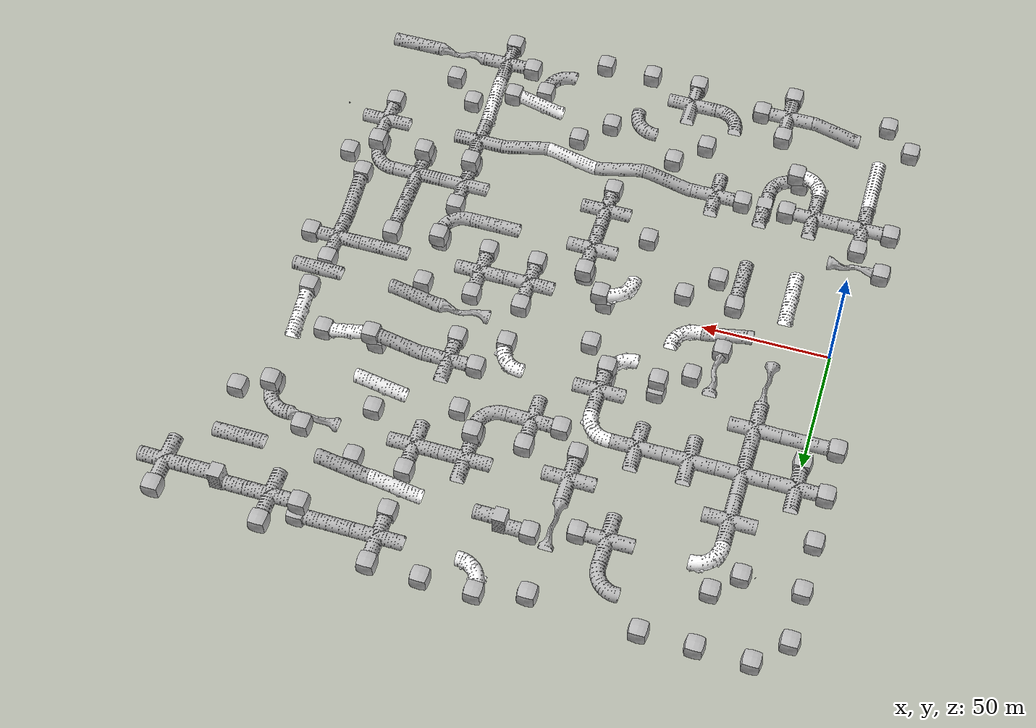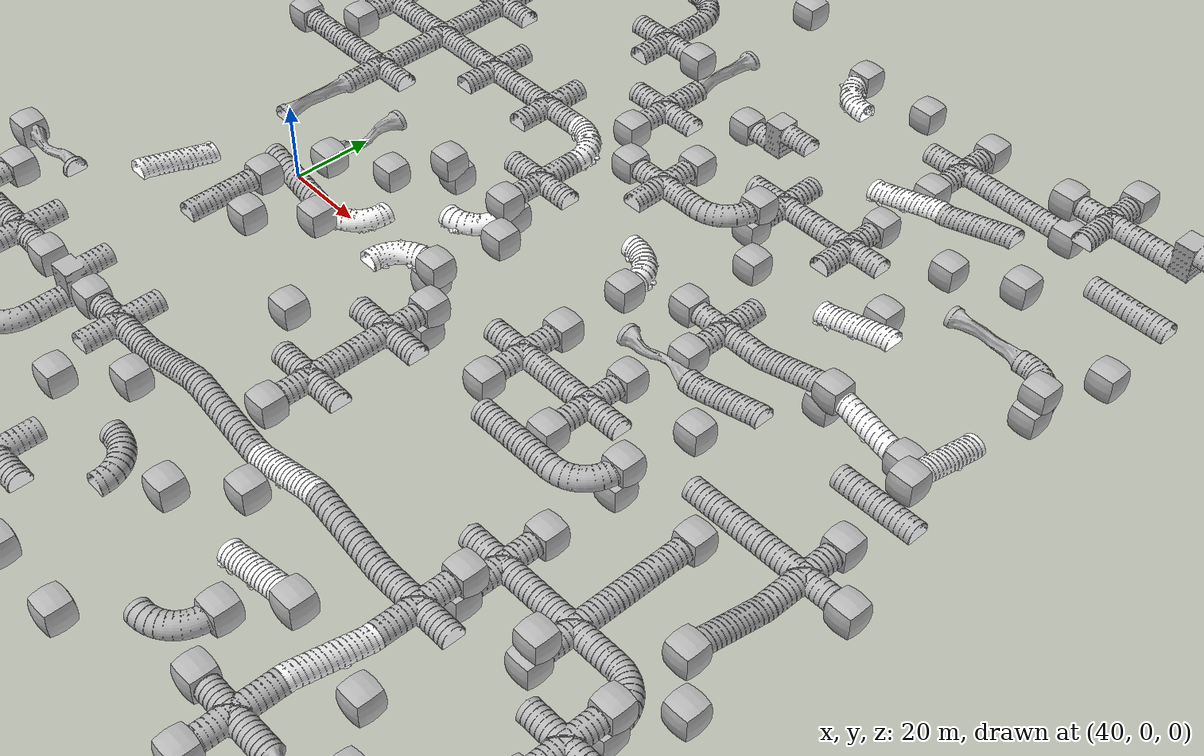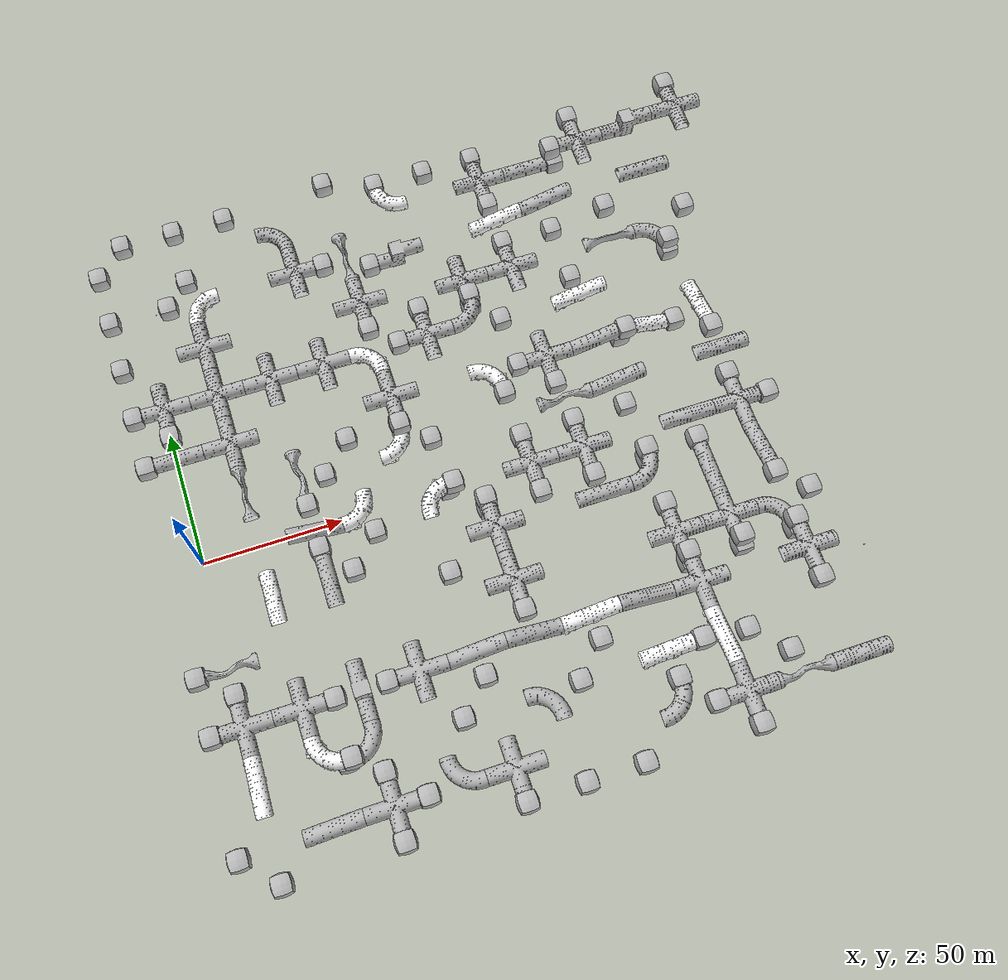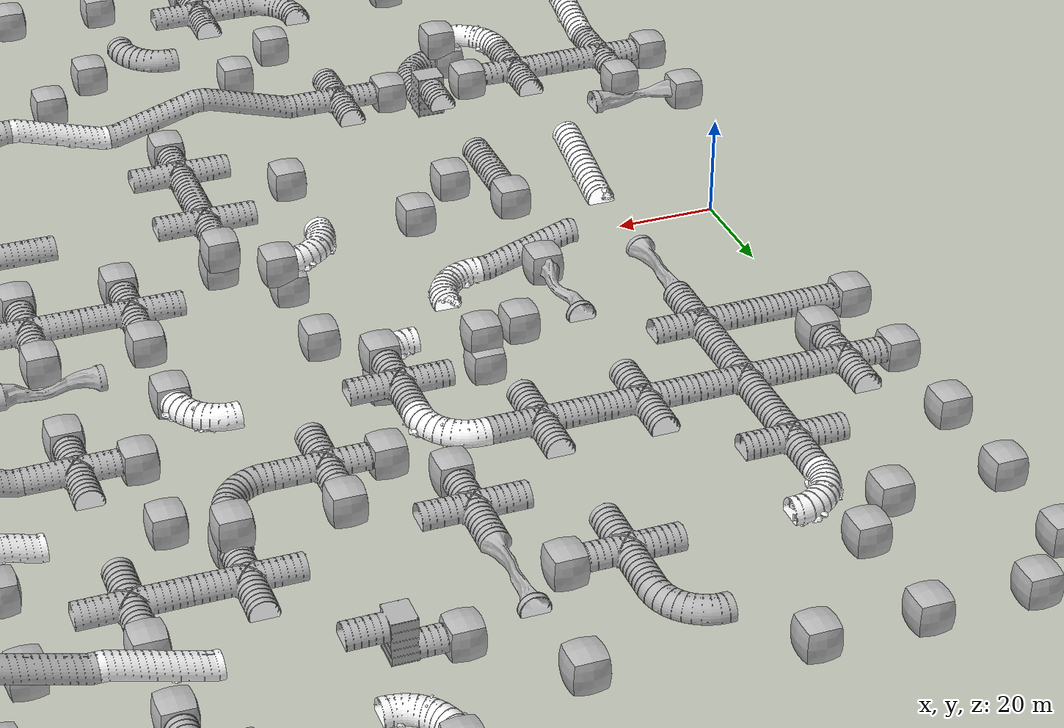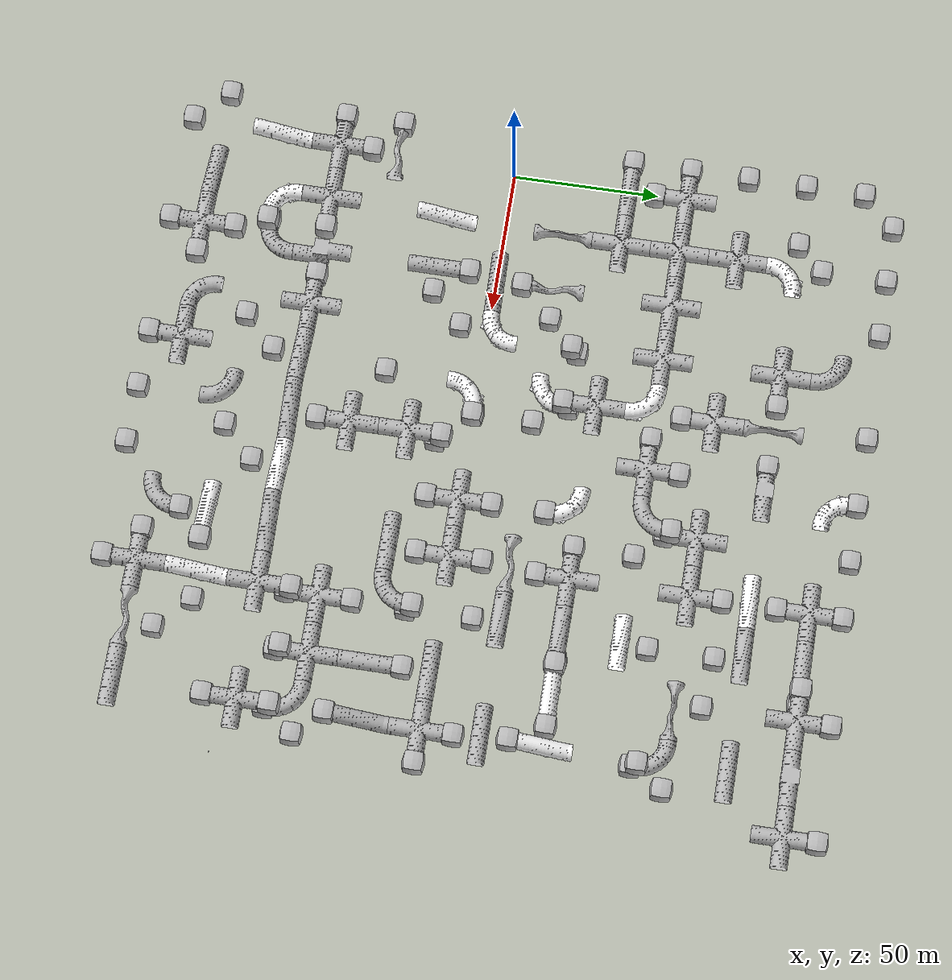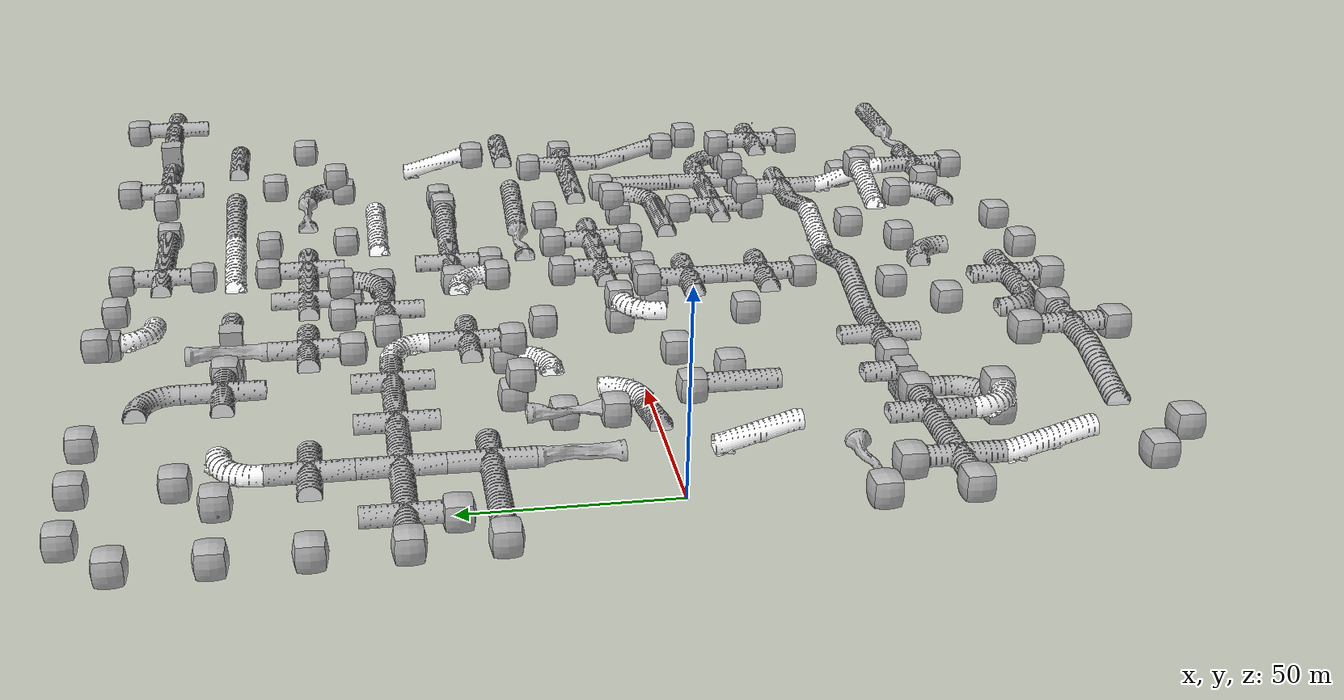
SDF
<sdf version="1.6">
 <world name="tunnel_circuit_practice_03">
  <include><name>artifact_origin</name><pose>10 0 0.0 0 0 0</pose><uri>model://fiducial</uri></include>
  <include>
   <name>tile_2</name>
   <uri>model://tunnel_tile_blocker</uri>
   <pose>-11.000000 120.000000 0.000000 0 0 0.000000</pose>
  </include>
  <include>
   <name>tile_3</name>
   <uri>model://tunnel_tile_blocker</uri>
   <pose>0.000000 131.000000 0.000000 0 0 0.000000</pose>
  </include>
  <include>
   <name>tile_5</name>
   <uri>model://tunnel_tile_blocker</uri>
   <pose>20.000000 109.000000 0.000000 0 0 0.000000</pose>
  </include>
  <include>
   <name>tile_6</name>
   <uri>model://tunnel_tile_blocker</uri>
   <pose>20.000000 131.000000 0.000000 0 0 0.000000</pose>
  </include>
  <include>
   <name>tile_8</name>
   <uri>model://tunnel_tile_blocker</uri>
   <pose>40.000000 131.000000 0.000000 0 0 0.000000</pose>
  </include>
  <include>
   <name>tile_9</name>
   <uri>model://tunnel_tile_2</uri>
   <pose>60.000000 120.000000 0.000000 0 0 4.712389</pose>
  </include>
  <include>
   <name>tile_11</name>
   <uri>model://tunnel_tile_blocker</uri>
   <pose>80.000000 131.000000 5.000000 0 0 0.000000</pose>
  </include>
  <include>
   <name>tile_12</name>
   <uri>model://Rough Tunnel Tile 90-degree Turn</uri>
   <pose>100.000000 120.000000 -5.000000 0 0 1.570796</pose>
  </include>
  <include>
   <name>tile_13</name>
   <uri>model://tunnel_tile_blocker</uri>
   <pose>100.000000 131.000000 -5.000000 0 0 0.000000</pose>
  </include>
  <include>
   <name>tile_15</name>
   <uri>model://tunnel_tile_blocker</uri>
   <pose>120.000000 131.000000 -5.000000 0 0 0.000000</pose>
  </include>
  <include>
   <name>tile_16</name>
   <uri>model://tunnel_tile_1</uri>
   <pose>140.000000 120.000000 -5.000000 0 0 0.000000</pose>
  </include>
  <include>
   <name>tile_17</name>
   <uri>model://tunnel_tile_blocker</uri>
   <pose>140.000000 131.000000 -5.000000 0 0 0.000000</pose>
  </include>
  <include>
   <name>tile_18</name>
   <uri>model://tunnel_tile_blocker</uri>
   <pose>140.000000 109.000000 -5.000000 0 0 0.000000</pose>
  </include>
  <include>
   <name>tile_19</name>
   <uri>model://tunnel_tile_5</uri>
   <pose>160.000000 120.000000 -5.000000 0 0 1.570796</pose>
  </include>
  <include>
   <name>tile_20</name>
   <uri>model://tunnel_tile_blocker</uri>
   <pose>171.000000 120.000000 -5.000000 0 0 0.000000</pose>
  </include>
  <include>
   <name>tile_21</name>
   <uri>model://tunnel_tile_1</uri>
   <pose>180.000000 120.000000 5.000000 0 0 0.000000</pose>
  </include>
  <include>
   <name>tile_22</name>
   <uri>model://tunnel_tile_blocker</uri>
   <pose>169.000000 120.000000 5.000000 0 0 0.000000</pose>
  </include>
  <include>
   <name>tile_23</name>
   <uri>model://tunnel_tile_blocker</uri>
   <pose>180.000000 131.000000 5.000000 0 0 0.000000</pose>
  </include>
  <include>
   <name>backpack_1</name>
   <uri>model://Backpack</uri>
   <pose>181.000000 126.000000 5.000000 0 0 0.261799</pose>
  </include>
  <include>
   <name>tile_24</name>
   <uri>model://tunnel_tile_7</uri>
   <pose>200.000000 120.000000 5.000000 0 0 4.712389</pose>
  </include>
  <include>
   <name>tile_25</name>
   <uri>model://tunnel_tile_1</uri>
   <pose>220.000000 120.000000 10.000000 0 0 0.000000</pose>
  </include>
  <include>
   <name>tile_26</name>
   <uri>model://tunnel_tile_blocker</uri>
   <pose>220.000000 131.000000 10.000000 0 0 0.000000</pose>
  </include>
  <include>
   <name>tile_51</name>
   <uri>model://tunnel_tile_blocker</uri>
   <pose>-11.000000 100.000000 0.000000 0 0 0.000000</pose>
  </include>
  <include>
   <name>tile_52</name>
   <uri>model://tunnel_tile_blocker</uri>
   <pose>11.000000 100.000000 0.000000 0 0 0.000000</pose>
  </include>
  <include>
   <name>backpack_2</name>
   <uri>model://Backpack</uri>
   <pose>6.000000 99.200000 0.000000 0 0 -1.570796</pose>
  </include>
  <include>
   <name>tile_53</name>
   <uri>model://Rough Tunnel Tile 90-degree Turn</uri>
   <pose>20.000000 100.000000 0.000000 0 0 0.000000</pose>
  </include>
  <include>
   <name>tile_55</name>
   <uri>model://tunnel_tile_1</uri>
   <pose>60.000000 100.000000 0.000000 0 0 0.000000</pose>
  </include>
  <include>
   <name>tile_56</name>
   <uri>model://tunnel_tile_blocker</uri>
   <pose>71.000000 100.000000 0.000000 0 0 0.000000</pose>
  </include>
  <include>
   <name>tile_57</name>
   <uri>model://constrained_tunnel_tile_tall</uri>
   <pose>80.000000 100.000000 0.000000 0 0 3.141593</pose>
  </include>
  <include>
   <name>tile_58</name>
   <uri>model://tunnel_tile_7</uri>
   <pose>100.000000 100.000000 -10.000000 0 0 4.712389</pose>
  </include>
  <include>
   <name>tile_59</name>
   <uri>model://tunnel_tile_blocker</uri>
   <pose>89.000000 100.000000 -10.000000 0 0 0.000000</pose>
  </include>
  <include>
   <name>tile_61</name>
   <uri>model://Rough Tunnel Tile Ramp</uri>
   <pose>140.000000 100.000000 -5.000000 0 0 4.712389</pose>
  </include>
  <include>
   <name>tile_62</name>
   <uri>model://tunnel_tile_6</uri>
   <pose>160.000000 100.000000 0.000000 0 0 4.712389</pose>
  </include>
  <include>
   <name>tile_64</name>
   <uri>model://tunnel_tile_blocker</uri>
   <pose>180.000000 89.000000 5.000000 0 0 0.000000</pose>
  </include>
  <include>
   <name>tile_65</name>
   <uri>model://tunnel_tile_5</uri>
   <pose>200.000000 100.000000 5.000000 0 0 1.570796</pose>
  </include>
  <include>
   <name>tile_85</name>
   <uri>model://tunnel_tile_blocker</uri>
   <pose>-11.000000 80.000000 0.000000 0 0 0.000000</pose>
  </include>
  <include>
   <name>tile_86</name>
   <uri>model://tunnel_tile_1</uri>
   <pose>20.000000 80.000000 0.000000 0 0 0.000000</pose>
  </include>
  <include>
   <name>tile_89</name>
   <uri>model://tunnel_tile_1</uri>
   <pose>80.000000 80.000000 0.000000 0 0 0.000000</pose>
  </include>
  <include>
   <name>tile_90</name>
   <uri>model://tunnel_tile_blocker</uri>
   <pose>80.000000 69.000000 0.000000 0 0 0.000000</pose>
  </include>
  <include>
   <name>tile_92</name>
   <uri>model://tunnel_tile_1</uri>
   <pose>120.000000 80.000000 -5.000000 0 0 0.000000</pose>
  </include>
  <include>
   <name>tile_93</name>
   <uri>model://tunnel_tile_blocker</uri>
   <pose>120.000000 69.000000 -5.000000 0 0 0.000000</pose>
  </include>
  <include>
   <name>tile_94</name>
   <uri>model://tunnel_tile_1</uri>
   <pose>140.000000 80.000000 -5.000000 0 0 0.000000</pose>
  </include>
  <include>
   <name>tile_95</name>
   <uri>model://tunnel_tile_blocker</uri>
   <pose>140.000000 91.000000 -5.000000 0 0 0.000000</pose>
  </include>
  <include>
   <name>tile_97</name>
   <uri>model://tunnel_tile_blocker</uri>
   <pose>160.000000 91.000000 -5.000000 0 0 0.000000</pose>
  </include>
  <include>
   <name>tile_98</name>
   <uri>model://tunnel_tile_blocker</uri>
   <pose>160.000000 69.000000 -5.000000 0 0 0.000000</pose>
  </include>
  <include>
   <name>tile_99</name>
   <uri>model://constrained_tunnel_tile_tall</uri>
   <pose>180.000000 80.000000 -5.000000 0 0 1.570796</pose>
  </include>
  <include>
   <name>tile_100</name>
   <uri>model://tunnel_tile_2</uri>
   <pose>200.000000 80.000000 -5.000000 0 0 4.712389</pose>
  </include>
  <include>
   <name>tile_101</name>
   <uri>model://tunnel_tile_blocker</uri>
   <pose>200.000000 69.000000 -5.000000 0 0 0.000000</pose>
  </include>
  <include>
   <name>tile_103</name>
   <uri>model://tunnel_tile_blocker</uri>
   <pose>209.000000 80.000000 5.000000 0 0 0.000000</pose>
  </include>
  <include>
   <name>tile_125</name>
   <uri>model://tunnel_tile_1</uri>
   <pose>0.000000 60.000000 0.000000 0 0 0.000000</pose>
  </include>
  <include>
   <name>tile_126</name>
   <uri>model://tunnel_tile_blocker</uri>
   <pose>0.000000 49.000000 0.000000 0 0 0.000000</pose>
  </include>
  <include>
   <name>tile_127</name>
   <uri>model://tunnel_tile_blocker</uri>
   <pose>-11.000000 60.000000 0.000000 0 0 0.000000</pose>
  </include>
  <include>
   <name>tile_128</name>
   <uri>model://tunnel_tile_1</uri>
   <pose>20.000000 60.000000 0.000000 0 0 0.000000</pose>
  </include>
  <include>
   <name>tile_129</name>
   <uri>model://tunnel_tile_1</uri>
   <pose>40.000000 60.000000 0.000000 0 0 0.000000</pose>
  </include>
  <include>
   <name>tile_130</name>
   <uri>model://tunnel_tile_1</uri>
   <pose>60.000000 60.000000 0.000000 0 0 0.000000</pose>
  </include>
  <include>
   <name>tile_131</name>
   <uri>model://Rough Tunnel Tile 90-degree Turn</uri>
   <pose>80.000000 60.000000 0.000000 0 0 4.712389</pose>
  </include>
  <include>
   <name>tile_132</name>
   <uri>model://tunnel_tile_1</uri>
   <pose>100.000000 60.000000 0.000000 0 0 0.000000</pose>
  </include>
  <include>
   <name>tile_133</name>
   <uri>model://tunnel_tile_blocker</uri>
   <pose>89.000000 60.000000 0.000000 0 0 0.000000</pose>
  </include>
  <include>
   <name>tile_134</name>
   <uri>model://tunnel_tile_blocker</uri>
   <pose>100.000000 71.000000 0.000000 0 0 0.000000</pose>
  </include>
  <include>
   <name>tile_135</name>
   <uri>model://tunnel_tile_2</uri>
   <pose>120.000000 60.000000 0.000000 0 0 3.141593</pose>
  </include>
  <include>
   <name>tile_136</name>
   <uri>model://tunnel_tile_blocker</uri>
   <pose>120.000000 71.000000 0.000000 0 0 0.000000</pose>
  </include>
  <include>
   <name>phone_3</name>
   <uri>model://Phone</uri>
   <pose>121.000000 65.600000 0.000000 -1.570796 0 0.436332</pose>
  </include>
  <include>
   <name>tile_138</name>
   <uri>model://tunnel_tile_blocker</uri>
   <pose>129.000000 60.000000 -5.000000 0 0 0.000000</pose>
  </include>
  <include>
   <name>tile_139</name>
   <uri>model://Rough Tunnel Tile Ramp</uri>
   <pose>160.000000 60.000000 -5.000000 0 0 4.712389</pose>
  </include>
  <include>
   <name>tile_142</name>
   <uri>model://tunnel_tile_blocker</uri>
   <pose>200.000000 71.000000 0.000000 0 0 0.000000</pose>
  </include>
  <include>
   <name>tile_162</name>
   <uri>model://tunnel_tile_5</uri>
   <pose>0.000000 40.000000 0.000000 0 0 4.712389</pose>
  </include>
  <include>
   <name>tile_163</name>
   <uri>model://tunnel_tile_blocker</uri>
   <pose>-11.000000 40.000000 0.000000 0 0 0.000000</pose>
  </include>
  <include>
   <name>tile_164</name>
   <uri>model://tunnel_tile_1</uri>
   <pose>20.000000 40.000000 0.000000 0 0 0.000000</pose>
  </include>
  <include>
   <name>tile_167</name>
   <uri>model://tunnel_tile_blocker</uri>
   <pose>60.000000 29.000000 0.000000 0 0 0.000000</pose>
  </include>
  <include>
   <name>tile_168</name>
   <uri>model://tunnel_tile_1</uri>
   <pose>80.000000 40.000000 0.000000 0 0 0.000000</pose>
  </include>
  <include>
   <name>tile_169</name>
   <uri>model://tunnel_tile_blocker</uri>
   <pose>80.000000 29.000000 0.000000 0 0 0.000000</pose>
  </include>
  <include>
   <name>tile_171</name>
   <uri>model://Rough Tunnel Tile 90-degree Turn</uri>
   <pose>120.000000 40.000000 0.000000 0 0 4.712389</pose>
  </include>
  <include>
   <name>tile_172</name>
   <uri>model://tunnel_tile_blocker</uri>
   <pose>120.000000 29.000000 0.000000 0 0 0.000000</pose>
  </include>
  <include>
   <name>tile_173</name>
   <uri>model://tunnel_tile_1</uri>
   <pose>140.000000 40.000000 -5.000000 0 0 0.000000</pose>
  </include>
  <include>
   <name>tile_174</name>
   <uri>model://tunnel_tile_blocker</uri>
   <pose>129.000000 40.000000 -5.000000 0 0 0.000000</pose>
  </include>
  <include>
   <name>tile_175</name>
   <uri>model://tunnel_tile_blocker</uri>
   <pose>140.000000 29.000000 -5.000000 0 0 0.000000</pose>
  </include>
  <include>
   <name>tile_176</name>
   <uri>model://tunnel_tile_6</uri>
   <pose>160.000000 40.000000 -5.000000 0 0 4.712389</pose>
  </include>
  <include>
   <name>tile_177</name>
   <uri>model://tunnel_tile_blocker</uri>
   <pose>171.000000 40.000000 0.000000 0 0 0.000000</pose>
  </include>
  <include>
   <name>tile_178</name>
   <uri>model://Rough Tunnel Tile Ramp</uri>
   <pose>180.000000 40.000000 -5.000000 0 0 1.570796</pose>
  </include>
  <include>
   <name>tile_179</name>
   <uri>model://tunnel_tile_blocker</uri>
   <pose>169.000000 40.000000 -5.000000 0 0 0.000000</pose>
  </include>
  <include>
   <name>tile_180</name>
   <uri>model://tunnel_tile_blocker</uri>
   <pose>191.000000 40.000000 -5.000000 0 0 0.000000</pose>
  </include>
  <include>
   <name>tile_181</name>
   <uri>model://Rough Tunnel Tile Ramp</uri>
   <pose>200.000000 40.000000 0.000000 0 0 3.141593</pose>
  </include>
  <include>
   <name>tile_182</name>
   <uri>model://tunnel_tile_blocker</uri>
   <pose>200.000000 29.000000 5.000000 0 0 0.000000</pose>
  </include>
  <include>
   <name>tile_197</name>
   <uri>model://constrained_tunnel_tile_tall</uri>
   <pose>20.000000 20.000000 0.000000 0 0 3.141593</pose>
  </include>
  <include>
   <name>tile_198</name>
   <uri>model://constrained_tunnel_tile_short</uri>
   <pose>40.000000 20.000000 0.000000 0 0 0.000000</pose>
  </include>
  <include>
   <name>tile_199</name>
   <uri>model://tunnel_tile_blocker</uri>
   <pose>40.000000 9.000000 0.000000 0 0 0.000000</pose>
  </include>
  <include>
   <name>tile_201</name>
   <uri>model://tunnel_tile_blocker</uri>
   <pose>49.000000 20.000000 -5.000000 0 0 0.000000</pose>
  </include>
  <include>
   <name>tile_202</name>
   <uri>model://tunnel_tile_blocker</uri>
   <pose>60.000000 31.000000 -5.000000 0 0 0.000000</pose>
  </include>
  <include>
   <name>tile_203</name>
   <uri>model://Rough Tunnel Tile 90-degree Turn</uri>
   <pose>80.000000 20.000000 -5.000000 0 0 3.141593</pose>
  </include>
  <include>
   <name>tile_204</name>
   <uri>model://tunnel_tile_blocker</uri>
   <pose>80.000000 31.000000 -5.000000 0 0 0.000000</pose>
  </include>
  <include>
   <name>tile_206</name>
   <uri>model://tunnel_tile_blocker</uri>
   <pose>89.000000 20.000000 0.000000 0 0 0.000000</pose>
  </include>
  <include>
   <name>tile_208</name>
   <uri>model://constrained_tunnel_tile_short</uri>
   <pose>140.000000 20.000000 0.000000 0 0 1.570796</pose>
  </include>
  <include>
   <name>tile_209</name>
   <uri>model://tunnel_tile_6</uri>
   <pose>160.000000 20.000000 0.000000 0 0 4.712389</pose>
  </include>
  <include>
   <name>tile_211</name>
   <uri>model://tunnel_tile_5</uri>
   <pose>200.000000 20.000000 5.000000 0 0 1.570796</pose>
  </include>
  <include>
   <name>tile_228</name>
   <uri>model://tunnel_tile_6</uri>
   <pose>40.000000 0.000000 -5.000000 0 0 1.570796</pose>
  </include>
  <include>
   <name>tile_229</name>
   <uri>model://Rough Tunnel Tile 90-degree Turn</uri>
   <pose>60.000000 0.000000 -5.000000 0 0 3.141593</pose>
  </include>
  <include>
   <name>tile_230</name>
   <uri>model://Rough Tunnel Tile 90-degree Turn</uri>
   <pose>80.000000 0.000000 5.000000 0 0 0.000000</pose>
  </include>
  <include>
   <name>tile_231</name>
   <uri>model://tunnel_tile_blocker</uri>
   <pose>91.000000 0.000000 5.000000 0 0 0.000000</pose>
  </include>
  <include>
   <name>tile_233</name>
   <uri>model://tunnel_tile_blocker</uri>
   <pose>89.000000 0.000000 0.000000 0 0 0.000000</pose>
  </include>
  <include>
   <name>tile_234</name>
   <uri>model://tunnel_tile_blocker</uri>
   <pose>100.000000 -11.000000 0.000000 0 0 0.000000</pose>
  </include>
  <include>
   <name>tile_235</name>
   <uri>model://tunnel_tile_1</uri>
   <pose>120.000000 0.000000 0.000000 0 0 0.000000</pose>
  </include>
  <include>
   <name>tile_236</name>
   <uri>model://tunnel_tile_blocker</uri>
   <pose>120.000000 11.000000 0.000000 0 0 0.000000</pose>
  </include>
  <include>
   <name>tile_237</name>
   <uri>model://tunnel_tile_blocker</uri>
   <pose>120.000000 -11.000000 0.000000 0 0 0.000000</pose>
  </include>
  <include>
   <name>tile_238</name>
   <uri>model://tunnel_tile_1</uri>
   <pose>140.000000 0.000000 0.000000 0 0 0.000000</pose>
  </include>
  <include>
   <name>tile_239</name>
   <uri>model://tunnel_tile_blocker</uri>
   <pose>140.000000 11.000000 0.000000 0 0 0.000000</pose>
  </include>
  <include>
   <name>tile_240</name>
   <uri>model://tunnel_tile_blocker</uri>
   <pose>140.000000 -11.000000 0.000000 0 0 0.000000</pose>
  </include>
  <include>
   <name>tile_242</name>
   <uri>model://tunnel_tile_blocker</uri>
   <pose>160.000000 11.000000 0.000000 0 0 0.000000</pose>
  </include>
  <include>
   <name>tile_243</name>
   <uri>model://tunnel_tile_blocker</uri>
   <pose>160.000000 -11.000000 0.000000 0 0 0.000000</pose>
  </include>
  <include>
   <name>tile_244</name>
   <uri>model://tunnel_tile_5</uri>
   <pose>180.000000 0.000000 0.000000 0 0 1.570796</pose>
  </include>
  <include>
   <name>tile_245</name>
   <uri>model://tunnel_tile_1</uri>
   <pose>200.000000 0.000000 0.000000 0 0 0.000000</pose>
  </include>
  <include>
   <name>tile_246</name>
   <uri>model://tunnel_tile_blocker</uri>
   <pose>200.000000 11.000000 0.000000 0 0 0.000000</pose>
  </include>
  <include>
   <name>tile_247</name>
   <uri>model://tunnel_tile_blocker</uri>
   <pose>211.000000 0.000000 0.000000 0 0 0.000000</pose>
  </include>
  <include>
   <name>tile_264</name>
   <uri>model://Rough Tunnel Tile Ramp</uri>
   <pose>20.000000 -20.000000 0.000000 0 0 3.141593</pose>
  </include>
  <include>
   <name>tile_265</name>
   <uri>model://tunnel_tile_5</uri>
   <pose>40.000000 -20.000000 5.000000 0 0 3.141593</pose>
  </include>
  <include>
   <name>tile_266</name>
   <uri>model://tunnel_tile_blocker</uri>
   <pose>40.000000 -9.000000 5.000000 0 0 0.000000</pose>
  </include>
  <include>
   <name>tile_268</name>
   <uri>model://tunnel_tile_blocker</uri>
   <pose>49.000000 -20.000000 5.000000 0 0 0.000000</pose>
  </include>
  <include>
   <name>tile_269</name>
   <uri>model://tunnel_tile_blocker</uri>
   <pose>60.000000 -9.000000 5.000000 0 0 0.000000</pose>
  </include>
  <include>
   <name>tile_271</name>
   <uri>model://tunnel_tile_blocker</uri>
   <pose>80.000000 -31.000000 5.000000 0 0 0.000000</pose>
  </include>
  <include>
   <name>tile_272</name>
   <uri>model://tunnel_tile_1</uri>
   <pose>100.000000 -20.000000 5.000000 0 0 0.000000</pose>
  </include>
  <include>
   <name>tile_273</name>
   <uri>model://tunnel_tile_blocker</uri>
   <pose>100.000000 -9.000000 5.000000 0 0 0.000000</pose>
  </include>
  <include>
   <name>tile_275</name>
   <uri>model://tunnel_tile_5</uri>
   <pose>140.000000 -20.000000 5.000000 0 0 1.570796</pose>
  </include>
  <include>
   <name>tile_276</name>
   <uri>model://tunnel_tile_2</uri>
   <pose>160.000000 -20.000000 5.000000 0 0 3.141593</pose>
  </include>
  <include>
   <name>tile_277</name>
   <uri>model://tunnel_tile_blocker</uri>
   <pose>160.000000 -9.000000 5.000000 0 0 0.000000</pose>
  </include>
  <include>
   <name>tile_278</name>
   <uri>model://tunnel_tile_5</uri>
   <pose>180.000000 -20.000000 0.000000 0 0 3.141593</pose>
  </include>
  <include>
   <name>tile_279</name>
   <uri>model://tunnel_tile_blocker</uri>
   <pose>180.000000 -9.000000 0.000000 0 0 0.000000</pose>
  </include>
  <include>
   <name>tile_280</name>
   <uri>model://tunnel_tile_6</uri>
   <pose>200.000000 -20.000000 0.000000 0 0 3.141593</pose>
  </include>
  <include>
   <name>tile_281</name>
   <uri>model://tunnel_tile_blocker</uri>
   <pose>200.000000 -31.000000 5.000000 0 0 0.000000</pose>
  </include>
  <include>
   <name>tile_299</name>
   <uri>model://constrained_tunnel_tile_short</uri>
   <pose>0.000000 -40.000000 5.000000 0 0 4.712389</pose>
  </include>
  <include>
   <name>tile_300</name>
   <uri>model://tunnel_tile_blocker</uri>
   <pose>-11.000000 -40.000000 5.000000 0 0 0.000000</pose>
  </include>
  <include>
   <name>tile_305</name>
   <uri>model://tunnel_tile_1</uri>
   <pose>100.000000 -40.000000 5.000000 0 0 0.000000</pose>
  </include>
  <include>
   <name>tile_306</name>
   <uri>model://tunnel_tile_blocker</uri>
   <pose>100.000000 -51.000000 5.000000 0 0 0.000000</pose>
  </include>
  <include>
   <name>tile_309</name>
   <uri>model://tunnel_tile_1</uri>
   <pose>160.000000 -40.000000 0.000000 0 0 0.000000</pose>
  </include>
  <include>
   <name>tile_310</name>
   <uri>model://tunnel_tile_blocker</uri>
   <pose>160.000000 -29.000000 0.000000 0 0 0.000000</pose>
  </include>
  <include>
   <name>tile_311</name>
   <uri>model://tunnel_tile_blocker</uri>
   <pose>160.000000 -51.000000 0.000000 0 0 0.000000</pose>
  </include>
  <include>
   <name>tile_312</name>
   <uri>model://tunnel_tile_1</uri>
   <pose>180.000000 -40.000000 0.000000 0 0 0.000000</pose>
  </include>
  <include>
   <name>tile_313</name>
   <uri>model://tunnel_tile_blocker</uri>
   <pose>180.000000 -51.000000 0.000000 0 0 0.000000</pose>
  </include>
  <include>
   <name>tile_314</name>
   <uri>model://tunnel_tile_2</uri>
   <pose>200.000000 -40.000000 0.000000 0 0 4.712389</pose>
  </include>
  <include>
   <name>tile_315</name>
   <uri>model://tunnel_tile_blocker</uri>
   <pose>200.000000 -51.000000 0.000000 0 0 0.000000</pose>
  </include>
  <include>
   <name>tile_318</name>
   <uri>model://tunnel_tile_blocker</uri>
   <pose>209.000000 -40.000000 5.000000 0 0 0.000000</pose>
  </include>
  <include>
   <name>tile_334</name>
   <uri>model://tunnel_tile_1</uri>
   <pose>0.000000 -60.000000 5.000000 0 0 0.000000</pose>
  </include>
  <include>
   <name>tile_335</name>
   <uri>model://tunnel_tile_blocker</uri>
   <pose>0.000000 -49.000000 5.000000 0 0 0.000000</pose>
  </include>
  <include>
   <name>tile_336</name>
   <uri>model://tunnel_tile_blocker</uri>
   <pose>-11.000000 -60.000000 5.000000 0 0 0.000000</pose>
  </include>
  <include>
   <name>tile_337</name>
   <uri>model://tunnel_tile_1</uri>
   <pose>20.000000 -60.000000 5.000000 0 0 0.000000</pose>
  </include>
  <include>
   <name>tile_338</name>
   <uri>model://tunnel_tile_blocker</uri>
   <pose>31.000000 -60.000000 5.000000 0 0 0.000000</pose>
  </include>
  <include>
   <name>tile_339</name>
   <uri>model://tunnel_tile_7</uri>
   <pose>40.000000 -60.000000 0.000000 0 0 0.000000</pose>
  </include>
  <include>
   <name>tile_340</name>
   <uri>model://tunnel_tile_1</uri>
   <pose>60.000000 -60.000000 5.000000 0 0 0.000000</pose>
  </include>
  <include>
   <name>tile_341</name>
   <uri>model://tunnel_tile_blocker</uri>
   <pose>49.000000 -60.000000 5.000000 0 0 0.000000</pose>
  </include>
  <include>
   <name>tile_342</name>
   <uri>model://tunnel_tile_6</uri>
   <pose>80.000000 -60.000000 5.000000 0 0 4.712389</pose>
  </include>
  <include>
   <name>tile_343</name>
   <uri>model://tunnel_tile_6</uri>
   <pose>100.000000 -60.000000 5.000000 0 0 1.570796</pose>
  </include>
  <include>
   <name>tile_344</name>
   <uri>model://Rough Tunnel Tile Ramp</uri>
   <pose>120.000000 -60.000000 5.000000 0 0 4.712389</pose>
  </include>
  <include>
   <name>tile_345</name>
   <uri>model://tunnel_tile_6</uri>
   <pose>140.000000 -60.000000 5.000000 0 0 1.570796</pose>
  </include>
  <include>
   <name>tile_346</name>
   <uri>model://tunnel_tile_1</uri>
   <pose>160.000000 -60.000000 5.000000 0 0 0.000000</pose>
  </include>
  <include>
   <name>tile_347</name>
   <uri>model://tunnel_tile_blocker</uri>
   <pose>160.000000 -49.000000 5.000000 0 0 0.000000</pose>
  </include>
  <include>
   <name>tile_349</name>
   <uri>model://tunnel_tile_blocker</uri>
   <pose>180.000000 -49.000000 5.000000 0 0 0.000000</pose>
  </include>
  <include>
   <name>tile_350</name>
   <uri>model://tunnel_tile_1</uri>
   <pose>200.000000 -60.000000 5.000000 0 0 0.000000</pose>
  </include>
  <include>
   <name>tile_351</name>
   <uri>model://tunnel_tile_blocker</uri>
   <pose>200.000000 -49.000000 5.000000 0 0 0.000000</pose>
  </include>
  <include>
   <name>tile_352</name>
   <uri>model://tunnel_tile_blocker</uri>
   <pose>200.000000 -71.000000 5.000000 0 0 0.000000</pose>
  </include>
  <include>
   <name>backpack_4</name>
   <uri>model://Backpack</uri>
   <pose>218.700000 -65.200000 5.000000 0 0 3.141593</pose>
  </include>
  <include>
   <name>tile_374</name>
   <uri>model://Rough Tunnel Tile Ramp</uri>
   <pose>0.000000 -80.000000 5.000000 0 0 3.141593</pose>
  </include>
  <include>
   <name>tile_375</name>
   <uri>model://Rough Tunnel Tile 90-degree Turn</uri>
   <pose>20.000000 -80.000000 5.000000 0 0 1.570796</pose>
  </include>
  <include>
   <name>tile_376</name>
   <uri>model://tunnel_tile_blocker</uri>
   <pose>31.000000 -80.000000 5.000000 0 0 0.000000</pose>
  </include>
  <include>
   <name>tile_377</name>
   <uri>model://tunnel_tile_2</uri>
   <pose>40.000000 -80.000000 0.000000 0 0 3.141593</pose>
  </include>
  <include>
   <name>tile_378</name>
   <uri>model://tunnel_tile_blocker</uri>
   <pose>29.000000 -80.000000 0.000000 0 0 0.000000</pose>
  </include>
  <include>
   <name>tile_381</name>
   <uri>model://tunnel_tile_blocker</uri>
   <pose>69.000000 -80.000000 10.000000 0 0 0.000000</pose>
  </include>
  <include>
   <name>tile_382</name>
   <uri>model://tunnel_tile_blocker</uri>
   <pose>80.000000 -69.000000 10.000000 0 0 0.000000</pose>
  </include>
  <include>
   <name>tile_383</name>
   <uri>model://tunnel_tile_2</uri>
   <pose>100.000000 -80.000000 10.000000 0 0 4.712389</pose>
  </include>
  <include>
   <name>tile_385</name>
   <uri>model://tunnel_tile_blocker</uri>
   <pose>109.000000 -80.000000 10.000000 0 0 0.000000</pose>
  </include>
  <include>
   <name>tile_386</name>
   <uri>model://tunnel_tile_blocker</uri>
   <pose>120.000000 -69.000000 10.000000 0 0 0.000000</pose>
  </include>
  <include>
   <name>tile_387</name>
   <uri>model://Rough Tunnel Tile Ramp</uri>
   <pose>140.000000 -80.000000 10.000000 0 0 4.712389</pose>
  </include>
  <include>
   <name>tile_388</name>
   <uri>model://tunnel_tile_blocker</uri>
   <pose>151.000000 -80.000000 15.000000 0 0 0.000000</pose>
  </include>
  <include>
   <name>tile_389</name>
   <uri>model://Rough Tunnel Tile Ramp</uri>
   <pose>160.000000 -80.000000 5.000000 0 0 3.141593</pose>
  </include>
  <include>
   <name>tile_391</name>
   <uri>model://tunnel_tile_blocker</uri>
   <pose>169.000000 -80.000000 5.000000 0 0 0.000000</pose>
  </include>
  <include>
   <name>tile_392</name>
   <uri>model://tunnel_tile_blocker</uri>
   <pose>180.000000 -91.000000 5.000000 0 0 0.000000</pose>
  </include>
  <include>
   <name>tile_412</name>
   <uri>model://tunnel_tile_blocker</uri>
   <pose>-11.000000 -100.000000 10.000000 0 0 0.000000</pose>
  </include>
  <include>
   <name>tile_413</name>
   <uri>model://tunnel_tile_blocker</uri>
   <pose>0.000000 -111.000000 10.000000 0 0 0.000000</pose>
  </include>
  <include>
   <name>tile_414</name>
   <uri>model://tunnel_tile_6</uri>
   <pose>20.000000 -100.000000 10.000000 0 0 4.712389</pose>
  </include>
  <include>
   <name>tile_415</name>
   <uri>model://tunnel_tile_1</uri>
   <pose>40.000000 -100.000000 15.000000 0 0 0.000000</pose>
  </include>
  <include>
   <name>tile_416</name>
   <uri>model://tunnel_tile_blocker</uri>
   <pose>40.000000 -89.000000 15.000000 0 0 0.000000</pose>
  </include>
  <include>
   <name>tile_417</name>
   <uri>model://tunnel_tile_blocker</uri>
   <pose>40.000000 -111.000000 15.000000 0 0 0.000000</pose>
  </include>
  <include>
   <name>tile_418</name>
   <uri>model://tunnel_tile_blocker</uri>
   <pose>51.000000 -100.000000 15.000000 0 0 0.000000</pose>
  </include>
  <include>
   <name>tile_419</name>
   <uri>model://tunnel_tile_2</uri>
   <pose>60.000000 -100.000000 10.000000 0 0 1.570796</pose>
  </include>
  <include>
   <name>tile_420</name>
   <uri>model://tunnel_tile_1</uri>
   <pose>80.000000 -100.000000 10.000000 0 0 0.000000</pose>
  </include>
  <include>
   <name>tile_421</name>
   <uri>model://tunnel_tile_blocker</uri>
   <pose>80.000000 -111.000000 10.000000 0 0 0.000000</pose>
  </include>
  <include>
   <name>tile_423</name>
   <uri>model://tunnel_tile_blocker</uri>
   <pose>100.000000 -111.000000 10.000000 0 0 0.000000</pose>
  </include>
  <include>
   <name>tile_425</name>
   <uri>model://tunnel_tile_blocker</uri>
   <pose>120.000000 -111.000000 10.000000 0 0 0.000000</pose>
  </include>
  <include>
   <name>tile_426</name>
   <uri>model://tunnel_tile_2</uri>
   <pose>140.000000 -100.000000 10.000000 0 0 3.141593</pose>
  </include>
  <include>
   <name>tile_427</name>
   <uri>model://tunnel_tile_blocker</uri>
   <pose>140.000000 -89.000000 10.000000 0 0 0.000000</pose>
  </include>
  <include>
   <name>extinguisher_4</name>
   <uri>model://Extinguisher</uri>
   <pose>137.000000 -99.000000 10.000000 0 0 0.349066</pose>
  </include>
  <include>
   <name>tile_428</name>
   <uri>model://tunnel_tile_1</uri>
   <pose>160.000000 -100.000000 10.000000 0 0 0.000000</pose>
  </include>
  <include>
   <name>tile_429</name>
   <uri>model://tunnel_tile_blocker</uri>
   <pose>149.000000 -100.000000 10.000000 0 0 0.000000</pose>
  </include>
  <include>
   <name>tile_430</name>
   <uri>model://tunnel_tile_blocker</uri>
   <pose>160.000000 -111.000000 10.000000 0 0 0.000000</pose>
  </include>
  <include>
   <name>tile_431</name>
   <uri>model://constrained_tunnel_tile_short</uri>
   <pose>180.000000 -100.000000 10.000000 0 0 1.570796</pose>
  </include>
  <include>
   <name>tile_432</name>
   <uri>model://tunnel_tile_5</uri>
   <pose>200.000000 -100.000000 10.000000 0 0 1.570796</pose>
  </include>
 </world>
</sdf>
